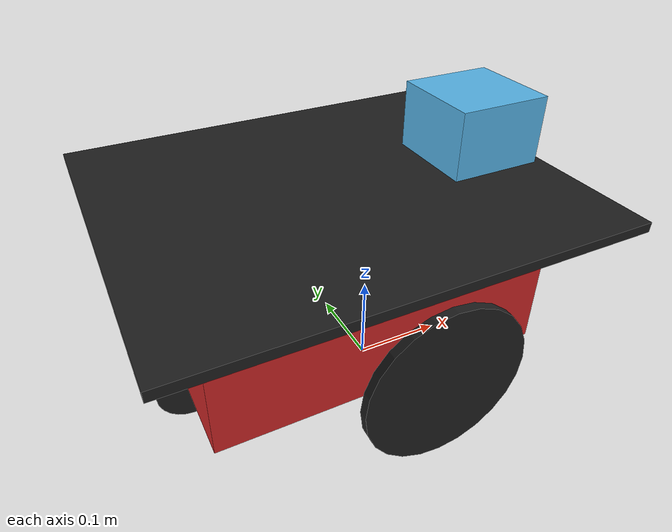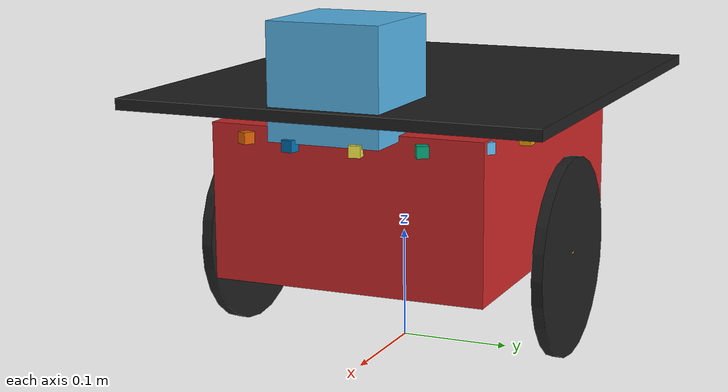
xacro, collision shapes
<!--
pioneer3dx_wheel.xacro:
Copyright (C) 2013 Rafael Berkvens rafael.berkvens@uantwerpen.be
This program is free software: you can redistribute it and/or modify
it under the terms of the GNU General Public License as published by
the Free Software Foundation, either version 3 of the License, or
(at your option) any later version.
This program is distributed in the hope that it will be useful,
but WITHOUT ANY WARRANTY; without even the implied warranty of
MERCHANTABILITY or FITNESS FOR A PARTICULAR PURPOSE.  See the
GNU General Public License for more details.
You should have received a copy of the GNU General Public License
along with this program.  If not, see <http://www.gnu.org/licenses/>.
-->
<?xml version="1.0"?>

<robot name="pioneer3dx"
	xmlns:xacro="http://ros.org/wiki/xacro"
	xmlns:sensor="http://playerstage.sourceforge.net/gazebo/xmlschema/#sensor"
  	xmlns:controller="http://playerstage.sourceforge.net/gazebo/xmlschema/#controller"
  	xmlns:interface="http://playerstage.sourceforge.net/gazebo/xmlschema/#interface">

	<!-- import all gazebo-customization elements, including gazebo colors -->
	<xacro:include filename="$(find p3dx_description)/urdf/pioneer3dx_new.gazebo" />

	<!-- import the pioneer 3dx's wheels -->
	<xacro:include filename="$(find p3dx_description)/urdf/pioneer3dx_wheel.xacro" />

	<!-- SONAR -->
	<xacro:include filename="$(find p3dx_description)/urdf/sonar.urdf.xacro" />
    <xacro:include filename="$(find gazebo_ros_3dx)/defs/sonar_pos.urdf.xacro"/>

	<!-- chassis -->
	<link name="base_link">
		<inertial>
			<mass value="3.5" />
			<origin xyz="-0.05 0 0" />
			<inertia ixx="1" ixy="0" ixz="0" iyy="1" iyz="0" izz="1" />
		</inertial>
		<visual>
			<origin xyz="-0.045 0 0.148" rpy="0 0 0" />
			<geometry name="pioneer_geom">
				<mesh filename="package://p3dx_description/meshes/chassis.stl" />
			</geometry>
			<material name="ChassisRed"></material>
		</visual>
		<collision>
			<origin xyz="-0.045 0 0.145" rpy="0 0 0" />
			<geometry>
				<box size="0.35 0.25 0.14" />
			</geometry>
		</collision>
	</link>
	<!-- top_plate -->
	<link name="top_plate">
		<inertial>
			<mass value="0.01" />
			<origin xyz="0 0 0" />
			<inertia ixx="1" ixy="0" ixz="0" iyy="1" iyz="0" izz="1" />
		</inertial>
		<visual>
			<origin xyz="0 0 0" rpy="0 0 0" />
			<geometry name="top_geom">
				<mesh filename="package://p3dx_description/meshes/top.stl" />
			</geometry>
			<material name="TopBlack"></material>
		</visual>
		<collision>
			<origin xyz="0.0 0 0" rpy="0 0 0" />
			<geometry name="pioneer_geom">
				<box size="0.45 0.38 0.01" />
			</geometry>
		</collision>
	</link>
	<joint name="base_top_joint" type="fixed">
		<origin xyz="-0.045 0 0.234" rpy="0 0 0" />
		<parent link="base_link" />
		<child link="top_plate" />
	</joint>
	<!-- swivel -->
	<link name="swivel">
		<inertial>
			<mass value="0.1" />
			<origin xyz="0 0 0" />
			<inertia ixx="0.01" ixy="0" ixz="0" iyy="0.01" iyz="0" izz="0.01" />
		</inertial>
		<visual>
			<origin xyz="0 0 0" rpy="0 0 0" />
			<geometry name="pioneer_geom">
				<mesh filename="package://p3dx_description/meshes/swivel.stl" />
			</geometry>
			<material name="swivel"></material>
		</visual>
		<collision>
			<origin xyz="0 0 0" rpy="0 0 0" />
			<geometry>
				<box size="0.00001 0.00001 0.00001" />
			</geometry>
		</collision>
	</link>
	<joint name="base_swivel_joint" type="fixed">
		<origin xyz="-0.185 0 0.055" rpy="0 0 0" />
		<axis xyz="0 0 1" />
		<anchor xyz="0 0 0" />
		<limit effort="100" velocity="100" k_velocity="0" />
		<joint_properties damping="0.0" friction="0.0" />
		<parent link="base_link" />
		<child link="swivel" />
	</joint>
	<!-- center_hubcap -->
	<link name="center_hubcap">
		<inertial>
			<mass value="0.01" />
			<origin xyz="0 0 0" />
			<inertia ixx="0.012411765597" ixy="-0.000711733678" ixz="0.00050272983" iyy="0.015218160428" iyz="-0.000004273467" izz="0.011763977943" />
		</inertial>
		<visual>
			<origin xyz="0 0 0" rpy="0 0 0" />
			<geometry name="pioneer_geom">
				<mesh filename="package://p3dx_description/meshes/center_hubcap.stl" />
			</geometry>
			<material name="swivel"></material>
		</visual>
		<collision>
			<origin xyz="0 0 0" rpy="0 0 0" />
			<geometry>
				<box size="0.00001 0.00001 0.00001" />
			</geometry>
		</collision>
	</link>
	<joint name="swivel_hubcap_joint" type="fixed">
		<origin xyz="-0.026 0 -0.016" rpy="0 0 0" />
		<axis xyz="0 1 0" />
		<anchor xyz="0 0 0" />
		<limit effort="100" velocity="100" k_velocity="0" />
		<joint_properties damping="0.0" friction="0.0" />
		<parent link="swivel" />
		<child link="center_wheel" />
	</joint>
	<!-- center_wheel -->
	<link name="center_wheel">
		<inertial>
			<mass value="1.0" />
			<origin xyz="0 0 0" />
			<inertia ixx="0.012411765597" ixy="-0.000711733678" ixz="0.00050272983" iyy="0.015218160428" iyz="-0.000004273467" izz="0.011763977943" />
		</inertial>
		<visual>
			<origin xyz="0 0 0" rpy="0 0 0" />
			<geometry name="pioneer_geom">
				<mesh filename="package://p3dx_description/meshes/center_wheel.stl" />
			</geometry>
			<material name="WheelBlack"></material>
		</visual>
		<collision>
			<origin xyz="0 0 0" rpy="${-3.1415927/2.0} 0 0" />
			<geometry>
				<cylinder radius="0.0375" length="0.01" />
			</geometry>
		</collision>
	</link>
	<joint name="center_wheel_joint" type="fixed">
		<origin xyz="-0.0035 0 -0.001" rpy="0 0 0"/>
		<parent link="center_wheel"/>
		<child link="center_hubcap"/>
	</joint>

	<!-- base -->
	<xacro:p3dx_wheel suffix="left" parent="base_link" reflect="-1"/>
	<xacro:p3dx_wheel suffix="right" parent="base_link" reflect="1"/>

	<!-- lms100 laser -->
	<link name="lms100">
		<inertial>
			<mass value="1e-5" />
			<origin xyz="0 0 0" rpy="0 0 0" />
			<inertia ixx="1e-6" ixy="0" ixz="0" iyy="1e-6" iyz="0" izz="1e-6" />
		</inertial>
		<visual>
			<origin xyz="0 0 0" rpy="0 0 0" />
			<geometry>
				<mesh filename="package://p3dx_description/meshes/lms100.dae" />
			</geometry>
		</visual>
		<collision>
			<origin xyz="0 0 0" rpy="0 0 0" />
			<geometry>
				<box size="0.1 0.1 0.1" />
			</geometry>
		</collision>
	</link>
	<joint name="lms100_joint" type="fixed">
		<axis xyz="0 1 0" />
		<origin xyz="0.12 0 0.26" rpy="0 0 0" />
		<parent link="base_link" />
		<child link="lms100" />
	</joint>

	<!-- !!!!  <<<<<<<<< CAMERA -->
	<!-- pelo que eu entendi, podera ir para dentro de outro .xacro ou .urdf, isso? -->
	<!-- Camera -->
	<!-- Size of square 'camera' box -->
	<!-- ISSO PODE IR PARA UM OUTRO GAZEBO FILE -->
	<!-- camera -->
			<!-- Noise is sampled independently per pixel on each frame.
				That pixel's noise value is added to each of its color
				channels, which at that point lie in the range [0,1]. -->

</robot>

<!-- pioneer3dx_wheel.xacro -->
<robot xmlns:xacro="http://ros.org/wiki/xacro">

	<!-- properties (constants) -->
	<property name="M_PI" value="3.14159" />

	<!-- right/left hubcap + wheel -->
	<xacro:macro name="p3dx_wheel" params="suffix parent reflect">

		<!-- wheel -->
		<link name="p3dx_${suffix}_wheel">
			<inertial>
				<mass value="0.5" />
				<origin xyz="0 0 0" />
				<inertia ixx="0.012411765597" ixy="0" ixz="0" iyy="0.015218160428"
					iyz="0" izz="0.011763977943" />
			</inertial>

			<visual name="base_visual">
				<origin xyz="0 0 0" rpy="0 0 0" />
				<geometry name="pioneer_geom">
					<mesh filename="package://p3dx_description/meshes/${suffix}_wheel.stl" />
				</geometry>
				<material name="WheelBlack">
					<color rgba="0.117 0.117 0.117 1" />
				</material>
			</visual>

			<collision>
				<origin xyz="0 0 0" rpy="${-3.1415927/2} 0 0" />
				<geometry>
					<cylinder radius="0.09" length="0.01" />
				</geometry>
			</collision>
		</link>

		<joint name="base_${suffix}_hubcap_joint" type="fixed">
			<origin xyz="0 0 0" rpy="0 0 0" />
			<parent link="p3dx_${suffix}_wheel" />
			<child link="p3dx_${suffix}_hubcap" />
		</joint>

		<!-- hubcap -->
		<link name="p3dx_${suffix}_hubcap">
			<inertial>
				<mass value="0.01" />
				<origin xyz="0 0 0" />
				<inertia ixx="0.012411765597" ixy="0" ixz="0" iyy="0.015218160428"
					iyz="0" izz="0.011763977943" />
			</inertial>

			<visual name="base_visual">
				<origin xyz="0 0 0" rpy="0 0 0" />
				<geometry name="pioneer_geom">
					<mesh filename="package://p3dx_description/meshes/${suffix}_hubcap.stl" />
				</geometry>

				<material name="HubcapYellow">
					<color rgba="1.0 0.811 0.151 1.0" />
				</material>
			</visual>

			<collision>
				<origin xyz="0 0 0" rpy="0 0 0" />
				<geometry>
					<box size="0.01 0.01 0.01" />
				</geometry>
			</collision>
		</link>

		<joint name="base_${suffix}_wheel_joint" type="continuous">
			<axis xyz="0 1 0" />
			<anchor xyz="0 0 0" />
			<limit effort="100" velocity="100" />
			<joint_properties damping="0.0" friction="0.0" />
			<origin xyz="0 ${reflect*0.158} 0.091" rpy="0 0 0" />
			<parent link="base_link" />
			<child link="p3dx_${suffix}_wheel" />
		</joint>

		<!-- gazebo elements -->

	    <transmission name="${parent}_${suffix}_wheel_trans">
	      <type>pr2_mechanism_model/SimpleTransmission</type>
	      <joint name="base_${suffix}_wheel_joint">
	      	<hardwareInterface>VelocityJointInterface</hardwareInterface>
	  	  </joint>
	      <actuator name="base_${suffix}_wheel_motor">
	        <mechanicalReduction>${reflect * 624/35 * 80/19}</mechanicalReduction>
	      </actuator>
	    </transmission>

		<gazebo reference="p3dx_${suffix}_hubcap">
			<material>Gazebo/Yellow</material>
		</gazebo>

		<gazebo reference="p3dx_${suffix}_wheel">
			<material>Gazebo/Black</material>
			<mu1>0.5</mu1>
			<mu2>50.0</mu2>
			<kp>100000000.0</kp>
			<kd>1.0</kd>
		</gazebo>

	</xacro:macro>

</robot>

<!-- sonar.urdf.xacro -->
<robot xmlns:xacro="http://www.ros.org/wiki/xacro">

  <xacro:macro name="sonar_sensor" params="name parent *origin ros_topic update_rate min_range max_range field_of_view ray_count">

    <joint name="${name}_joint" type="fixed">
      <xacro:insert_block name="origin" />
      <parent link="${parent}"/>
      <child link="${name}_link"/>
    </joint>

    <link name="${name}_link">
      <inertial>
        <mass value="0.001" />
        <origin xyz="0 0 0" rpy="0 0 0" />
        <inertia ixx="0.000000017" ixy="0" ixz="0" iyy="0.000000017" iyz="0" izz="0.000000017" />
      </inertial>
      <visual>
        <origin xyz="0 0 0" rpy="0 0 0" />
        <geometry>
          <mesh filename="package://hector_sensors_description/meshes/sonar_sensor/max_sonar_ez4.dae"/>
        </geometry>
      </visual>
      <collision>
        <origin xyz="0 0 0" rpy="0 0 0" />
        <geometry>
          <box size="0.01 0.01 0.01" />
        </geometry>
      </collision>
    </link>

    <gazebo reference="${name}_link">
      <sensor type="ray" name="${name}">
        <always_on>true</always_on>
        <update_rate>${update_rate}</update_rate>
        <pose>0 0 0 0 0 0</pose>
        <visualize>true</visualize>
        <ray>
          <scan>
            <horizontal>
              <samples>${ray_count}</samples>
              <resolution>1</resolution>
              <min_angle>-${field_of_view/2}</min_angle>
              <max_angle> ${field_of_view/2}</max_angle>
            </horizontal>
            <vertical>
              <samples>${ray_count}</samples>
              <resolution>1</resolution>
              <min_angle> 0,05</min_angle>
              <max_angle> ${field_of_view/2}</max_angle>
            </vertical>
          </scan>
          <range>
            <min>${min_range}</min>
            <max>${max_range}</max>
            <resolution>0.01</resolution>
          </range>
        </ray>

        <plugin name="gazebo_ros_${name}_controller" filename="libhector_gazebo_ros_sonar.so">
          <gaussianNoise>0.005</gaussianNoise>
          <topicName>${ros_topic}</topicName>
          <frameId>${name}_link</frameId>
        </plugin>
      </sensor>
    </gazebo>
  </xacro:macro>
</robot>

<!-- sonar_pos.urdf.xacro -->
<robot xmlns:interface="http://playerstage.sourceforge.net/gazebo/xmlschema/#interface" xmlns:xacro="http://ros.org/wiki/xacro" xmlns:sensor="http://playerstage.sourceforge.net/gazebo/xmlschema/#sensor">
<xacro:sonar_sensor update_rate="10" name="sonar0" ros_topic="sonar0" min_range="0.100000" ray_count="2" field_of_view="0.267000" parent="base_link" max_range="3">
<origin xyz="0.067700 0.140400 0.208400" rpy="0 0 1.570796"/>
 </xacro:sonar_sensor>
 <xacro:sonar_sensor update_rate="10" name="sonar1" ros_topic="sonar1" min_range="0.100000" ray_count="2" field_of_view="0.267000" parent="base_link" max_range="3">
<origin xyz="0.117200 0.122900 0.208400" rpy="0 0 0.872665"/>
 </xacro:sonar_sensor>
 <xacro:sonar_sensor update_rate="10" name="sonar2" ros_topic="sonar2" min_range="0.100000" ray_count="2" field_of_view="0.267000" parent="base_link" max_range="3">
<origin xyz="0.151700 0.079900 0.208400" rpy="0 0 0.523599"/>
 </xacro:sonar_sensor>
 <xacro:sonar_sensor update_rate="10" name="sonar3" ros_topic="sonar3" min_range="0.100000" ray_count="2" field_of_view="0.267000" parent="base_link" max_range="3">
<origin xyz="0.169900 0.029700 0.208400" rpy="0 0 0.174533"/>
 </xacro:sonar_sensor>
 <xacro:sonar_sensor update_rate="10" name="sonar4" ros_topic="sonar4" min_range="0.100000" ray_count="2" field_of_view="0.267000" parent="base_link" max_range="3">
<origin xyz="0.169900 -0.029700 0.208400" rpy="0 0 -0.174533"/>
 </xacro:sonar_sensor>
 <xacro:sonar_sensor update_rate="10" name="sonar5" ros_topic="sonar5" min_range="0.100000" ray_count="2" field_of_view="0.267000" parent="base_link" max_range="3">
<origin xyz="0.151700 -0.079900 0.208400" rpy="0 0 -0.523599"/>
 </xacro:sonar_sensor>
 <xacro:sonar_sensor update_rate="10" name="sonar6" ros_topic="sonar6" min_range="0.100000" ray_count="2" field_of_view="0.267000" parent="base_link" max_range="3">
<origin xyz="0.117200 -0.122900 0.208400" rpy="0 0 -0.872665"/>
 </xacro:sonar_sensor>
 <xacro:sonar_sensor update_rate="10" name="sonar7" ros_topic="sonar7" min_range="0.100000" ray_count="2" field_of_view="0.267000" parent="base_link" max_range="3">
<origin xyz="0.067700 -0.140400 0.208400" rpy="0 0 -1.570796"/>
 </xacro:sonar_sensor>
 </robot>
